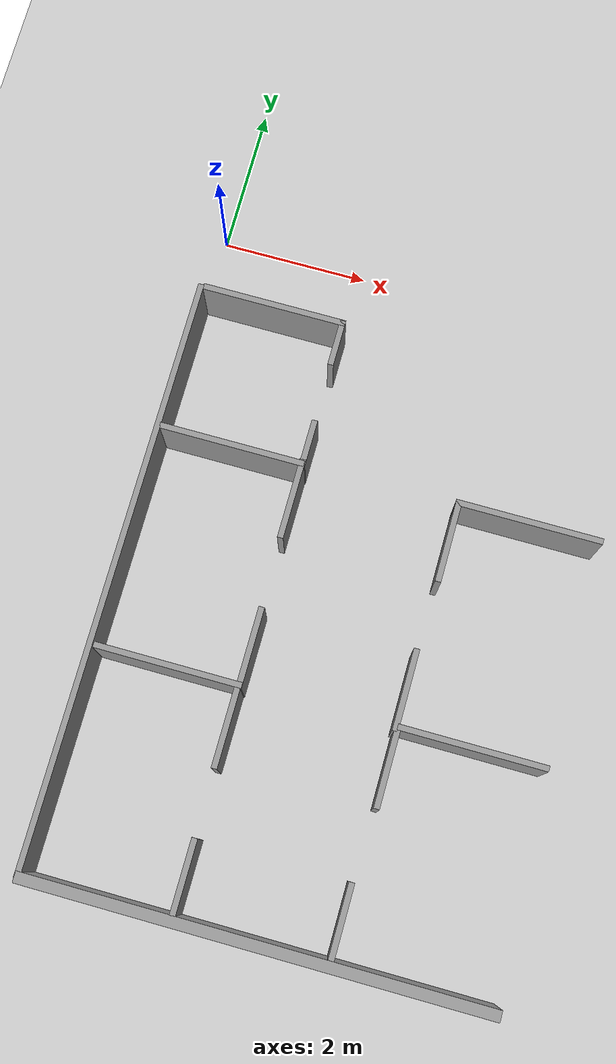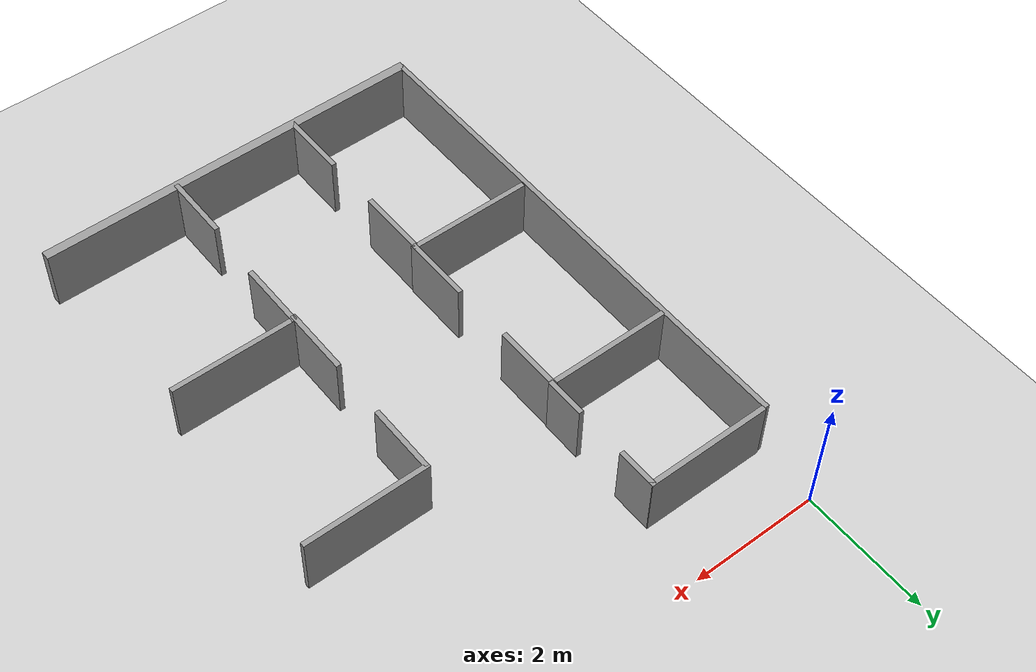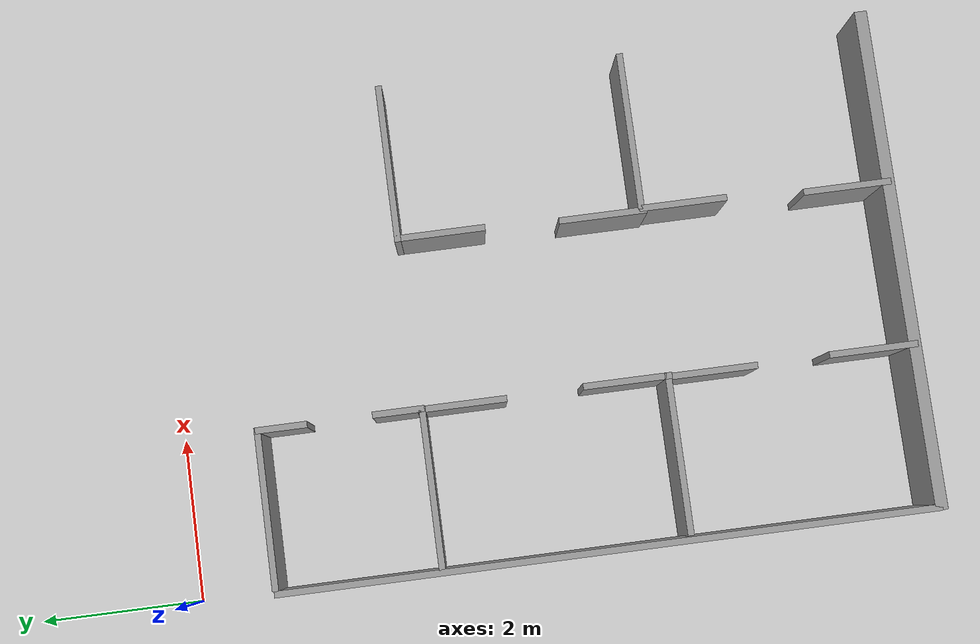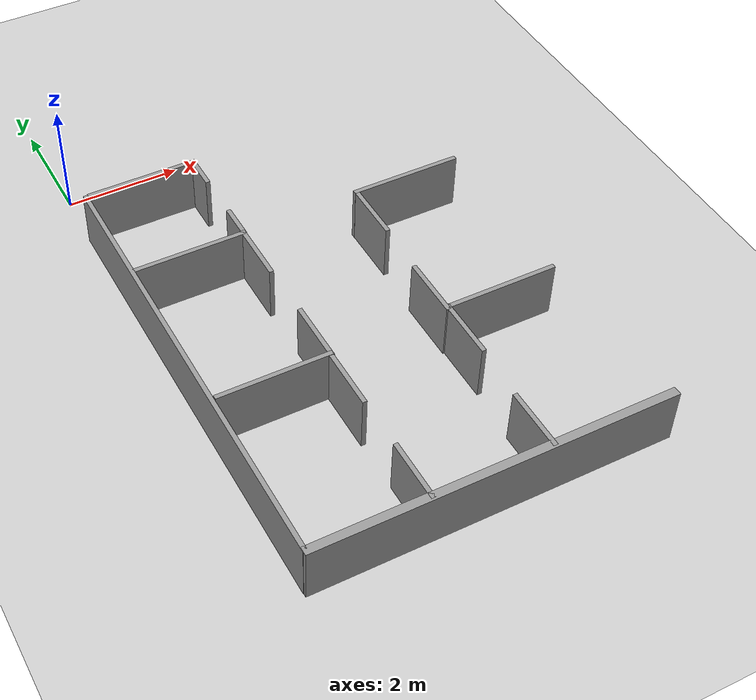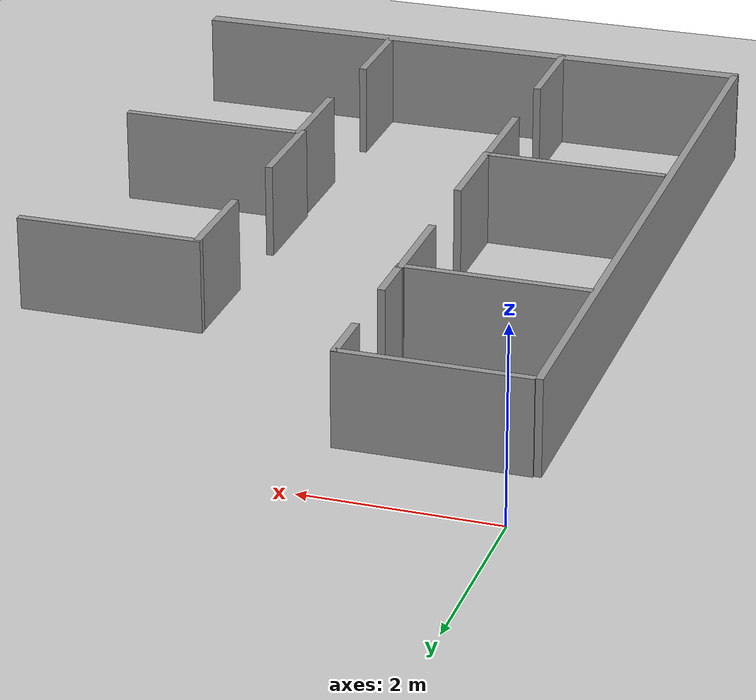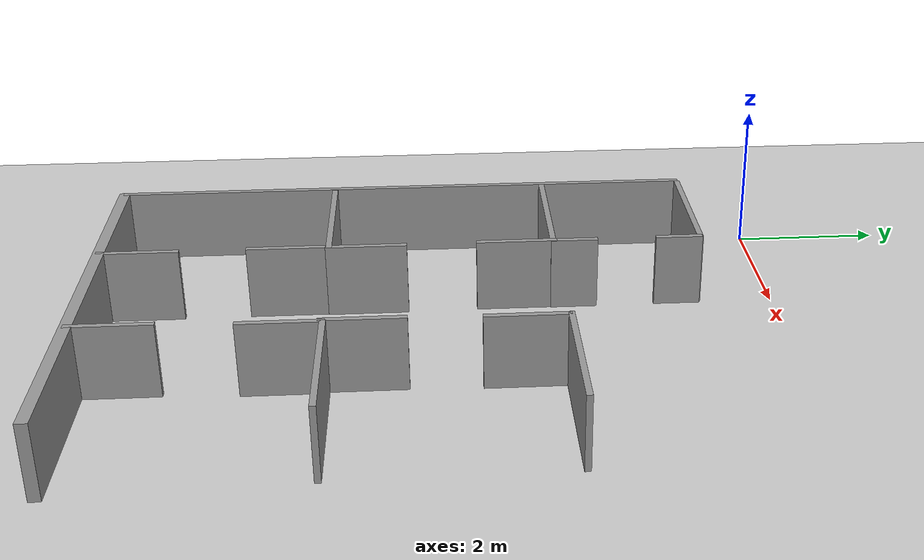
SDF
<sdf version="1.7">
 <world name="default">
  <model name="ground_plane">
   <static>1</static>
   <link name="link">
    <collision name="collision">
     <geometry><plane><normal>0 0 1</normal><size>100 100</size></plane></geometry>
     <surface><friction><ode><mu>100</mu><mu2>50</mu2></ode></friction></surface>
    </collision>
    <visual name="visual">
     <cast_shadows>0</cast_shadows>
     <geometry><plane><normal>0 0 1</normal><size>100 100</size></plane></geometry>
     <material>
      <script><uri>file://media/materials/scripts/gazebo.material</uri><name>Gazebo/Grey</name></script>
     </material>
    </visual>
   </link>
  </model>
  <model name="areaConhecida">
   <link name="link">
    <inertial>
     <mass>0.638348</mass>
     <inertia><ixx>3.5065</ixx><ixy>0</ixy><ixz>0</ixz><iyy>0.0535306</iyy><iyz>0</iyz><izz>3.45364</izz></inertia>
    </inertial>
    <pose>0.364781 -4.12525 0 0 -0 0</pose>
    <visual name="visual">
     <geometry><box><size>0.07935 8.05711 1</size></box></geometry>
     <material>
      <script><name>Gazebo/Grey</name><uri>file://media/materials/scripts/gazebo.material</uri></script>
      <shader type="pixel"/>
     </material>
    </visual>
    <collision name="collision">
     <geometry><box><size>0.07935 8.05711 1</size></box></geometry>
     <surface>
      <friction>
       <ode><mu>1</mu><mu2>1</mu2><fdir1>0 0 0</fdir1><slip1>0</slip1><slip2>0</slip2></ode>
       <torsional>
        <coefficient>1</coefficient>
        <patch_radius>0</patch_radius>
        <surface_radius>0</surface_radius>
        <use_patch_radius>1</use_patch_radius>
        <ode><slip>0</slip></ode>
       </torsional>
      </friction>
      <bounce><restitution_coefficient>0</restitution_coefficient><threshold>1e+06</threshold></bounce>
      <contact>
       <collide_without_contact>0</collide_without_contact>
       <collide_without_contact_bitmask>1</collide_without_contact_bitmask>
       <collide_bitmask>1</collide_bitmask>
       <ode>
        <soft_cfm>0</soft_cfm>
        <soft_erp>0.2</soft_erp>
        <kp>1e+13</kp>
        <kd>1</kd>
        <max_vel>0.01</max_vel>
        <min_depth>0</min_depth>
       </ode>
       <bullet>
        <split_impulse>1</split_impulse>
        <split_impulse_penetration_threshold>-0.01</split_impulse_penetration_threshold>
        <soft_cfm>0</soft_cfm>
        <soft_erp>0.2</soft_erp>
        <kp>1e+13</kp>
        <kd>1</kd>
       </bullet>
      </contact>
     </surface>
    </collision>
   </link>
   <link name="link_clone_1">
    <inertial>
     <mass>0.942553</mass>
     <inertia>
      <ixx>3.09537</ixx>
      <ixy>0</ixy>
      <ixz>0</ixz>
      <iyy>0.0803686</iyy>
      <iyz>0</iyz>
      <izz>3.01865</izz>
     </inertia>
    </inertial>
    <pose>3.43064 -8.13641 -0 0 0 -1.56949</pose>
    <visual name="visual">
     <geometry><box><size>0.152328 6.19745 1</size></box></geometry>
     <material>
      <script><name>Gazebo/Grey</name><uri>file://media/materials/scripts/gazebo.material</uri></script>
      <shader type="pixel"/>
     </material>
    </visual>
    <collision name="collision">
     <geometry><box><size>0.152328 6.19745 1</size></box></geometry>
     <surface>
      <friction>
       <ode><mu>1</mu><mu2>1</mu2><fdir1>0 0 0</fdir1><slip1>0</slip1><slip2>0</slip2></ode>
       <torsional>
        <coefficient>1</coefficient>
        <patch_radius>0</patch_radius>
        <surface_radius>0</surface_radius>
        <use_patch_radius>1</use_patch_radius>
        <ode><slip>0</slip></ode>
       </torsional>
      </friction>
      <bounce><restitution_coefficient>0</restitution_coefficient><threshold>1e+06</threshold></bounce>
      <contact>
       <collide_without_contact>0</collide_without_contact>
       <collide_without_contact_bitmask>1</collide_without_contact_bitmask>
       <collide_bitmask>1</collide_bitmask>
       <ode>
        <soft_cfm>0</soft_cfm>
        <soft_erp>0.2</soft_erp>
        <kp>1e+13</kp>
        <kd>1</kd>
        <max_vel>0.01</max_vel>
        <min_depth>0</min_depth>
       </ode>
       <bullet>
        <split_impulse>1</split_impulse>
        <split_impulse_penetration_threshold>-0.01</split_impulse_penetration_threshold>
        <soft_cfm>0</soft_cfm>
        <soft_erp>0.2</soft_erp>
        <kp>1e+13</kp>
        <kd>1</kd>
       </bullet>
      </contact>
     </surface>
    </collision>
   </link>
   <link name="link_clone_2_clone_clone_1">
    <inertial>
     <mass>0.155791</mass>
     <inertia>
      <ixx>0.0631807</ixx>
      <ixy>0</ixy>
      <ixz>0</ixz>
      <iyy>0.0130643</iyy>
      <iyz>0</iyz>
      <izz>0.0502798</izz>
     </inertia>
    </inertial>
    <pose>1.38258 -0.115056 -0 0 0 -1.57058</pose>
    <visual name="visual">
     <geometry><box><size>0.07935 1.96636 1</size></box></geometry>
     <material>
      <script><name>Gazebo/Grey</name><uri>file://media/materials/scripts/gazebo.material</uri></script>
      <shader type="pixel"/>
     </material>
    </visual>
    <collision name="collision">
     <geometry><box><size>0.07935 1.96636 1</size></box></geometry>
     <surface>
      <friction>
       <ode><mu>1</mu><mu2>1</mu2><fdir1>0 0 0</fdir1><slip1>0</slip1><slip2>0</slip2></ode>
       <torsional>
        <coefficient>1</coefficient>
        <patch_radius>0</patch_radius>
        <surface_radius>0</surface_radius>
        <use_patch_radius>1</use_patch_radius>
        <ode><slip>0</slip></ode>
       </torsional>
      </friction>
      <bounce><restitution_coefficient>0</restitution_coefficient><threshold>1e+06</threshold></bounce>
      <contact>
       <collide_without_contact>0</collide_without_contact>
       <collide_without_contact_bitmask>1</collide_without_contact_bitmask>
       <collide_bitmask>1</collide_bitmask>
       <ode>
        <soft_cfm>0</soft_cfm>
        <soft_erp>0.2</soft_erp>
        <kp>1e+13</kp>
        <kd>1</kd>
        <max_vel>0.01</max_vel>
        <min_depth>0</min_depth>
       </ode>
       <bullet>
        <split_impulse>1</split_impulse>
        <split_impulse_penetration_threshold>-0.01</split_impulse_penetration_threshold>
        <soft_cfm>0</soft_cfm>
        <soft_erp>0.2</soft_erp>
        <kp>1e+13</kp>
        <kd>1</kd>
       </bullet>
      </contact>
     </surface>
    </collision>
   </link>
   <link name="link_clone_2_clone_clone_2">
    <inertial>
     <mass>0.155791</mass>
     <inertia>
      <ixx>0.0631807</ixx>
      <ixy>0</ixy>
      <ixz>0</ixz>
      <iyy>0.0130643</iyy>
      <iyz>0</iyz>
      <izz>0.0502798</izz>
     </inertia>
    </inertial>
    <pose>1.37512 -2.11738 -0 0 0 -1.57058</pose>
    <visual name="visual">
     <geometry><box><size>0.07935 1.96636 1</size></box></geometry>
     <material>
      <script><name>Gazebo/Grey</name><uri>file://media/materials/scripts/gazebo.material</uri></script>
      <shader type="pixel"/>
     </material>
    </visual>
    <collision name="collision">
     <geometry><box><size>0.07935 1.96636 1</size></box></geometry>
     <surface>
      <friction>
       <ode><mu>1</mu><mu2>1</mu2><fdir1>0 0 0</fdir1><slip1>0</slip1><slip2>0</slip2></ode>
       <torsional>
        <coefficient>1</coefficient>
        <patch_radius>0</patch_radius>
        <surface_radius>0</surface_radius>
        <use_patch_radius>1</use_patch_radius>
        <ode><slip>0</slip></ode>
       </torsional>
      </friction>
      <bounce><restitution_coefficient>0</restitution_coefficient><threshold>1e+06</threshold></bounce>
      <contact>
       <collide_without_contact>0</collide_without_contact>
       <collide_without_contact_bitmask>1</collide_without_contact_bitmask>
       <collide_bitmask>1</collide_bitmask>
       <ode>
        <soft_cfm>0</soft_cfm>
        <soft_erp>0.2</soft_erp>
        <kp>1e+13</kp>
        <kd>1</kd>
        <max_vel>0.01</max_vel>
        <min_depth>0</min_depth>
       </ode>
       <bullet>
        <split_impulse>1</split_impulse>
        <split_impulse_penetration_threshold>-0.01</split_impulse_penetration_threshold>
        <soft_cfm>0</soft_cfm>
        <soft_erp>0.2</soft_erp>
        <kp>1e+13</kp>
        <kd>1</kd>
       </bullet>
      </contact>
     </surface>
    </collision>
   </link>
   <link name="link_clone_2_clone_clone_3">
    <inertial>
     <mass>0.155791</mass>
     <inertia>
      <ixx>0.0631807</ixx>
      <ixy>0</ixy>
      <ixz>0</ixz>
      <iyy>0.0130643</iyy>
      <iyz>0</iyz>
      <izz>0.0502798</izz>
     </inertia>
    </inertial>
    <pose>1.39974 -5.11867 -0 0 0 -1.57058</pose>
    <visual name="visual">
     <geometry><box><size>0.07935 1.96636 1</size></box></geometry>
     <material>
      <script><name>Gazebo/Grey</name><uri>file://media/materials/scripts/gazebo.material</uri></script>
      <shader type="pixel"/>
     </material>
    </visual>
    <collision name="collision">
     <geometry><box><size>0.07935 1.96636 1</size></box></geometry>
     <surface>
      <friction>
       <ode><mu>1</mu><mu2>1</mu2><fdir1>0 0 0</fdir1><slip1>0</slip1><slip2>0</slip2></ode>
       <torsional>
        <coefficient>1</coefficient>
        <patch_radius>0</patch_radius>
        <surface_radius>0</surface_radius>
        <use_patch_radius>1</use_patch_radius>
        <ode><slip>0</slip></ode>
       </torsional>
      </friction>
      <bounce><restitution_coefficient>0</restitution_coefficient><threshold>1e+06</threshold></bounce>
      <contact>
       <collide_without_contact>0</collide_without_contact>
       <collide_without_contact_bitmask>1</collide_without_contact_bitmask>
       <collide_bitmask>1</collide_bitmask>
       <ode>
        <soft_cfm>0</soft_cfm>
        <soft_erp>0.2</soft_erp>
        <kp>1e+13</kp>
        <kd>1</kd>
        <max_vel>0.01</max_vel>
        <min_depth>0</min_depth>
       </ode>
       <bullet>
        <split_impulse>1</split_impulse>
        <split_impulse_penetration_threshold>-0.01</split_impulse_penetration_threshold>
        <soft_cfm>0</soft_cfm>
        <soft_erp>0.2</soft_erp>
        <kp>1e+13</kp>
        <kd>1</kd>
       </bullet>
      </contact>
     </surface>
    </collision>
   </link>
   <link name="link_clone_2_clone_clone_4">
    <inertial>
     <mass>0.155791</mass>
     <inertia>
      <ixx>0.0631807</ixx>
      <ixy>0</ixy>
      <ixz>0</ixz>
      <iyy>0.0130643</iyy>
      <iyz>0</iyz>
      <izz>0.0502798</izz>
     </inertia>
    </inertial>
    <pose>5.39879 -5.08822 -0 0 0 -1.57058</pose>
    <visual name="visual">
     <geometry><box><size>0.07935 1.96636 1</size></box></geometry>
     <material>
      <script><name>Gazebo/Grey</name><uri>file://media/materials/scripts/gazebo.material</uri></script>
      <shader type="pixel"/>
     </material>
    </visual>
    <collision name="collision">
     <geometry><box><size>0.07935 1.96636 1</size></box></geometry>
     <surface>
      <friction>
       <ode><mu>1</mu><mu2>1</mu2><fdir1>0 0 0</fdir1><slip1>0</slip1><slip2>0</slip2></ode>
       <torsional>
        <coefficient>1</coefficient>
        <patch_radius>0</patch_radius>
        <surface_radius>0</surface_radius>
        <use_patch_radius>1</use_patch_radius>
        <ode><slip>0</slip></ode>
       </torsional>
      </friction>
      <bounce><restitution_coefficient>0</restitution_coefficient><threshold>1e+06</threshold></bounce>
      <contact>
       <collide_without_contact>0</collide_without_contact>
       <collide_without_contact_bitmask>1</collide_without_contact_bitmask>
       <collide_bitmask>1</collide_bitmask>
       <ode>
        <soft_cfm>0</soft_cfm>
        <soft_erp>0.2</soft_erp>
        <kp>1e+13</kp>
        <kd>1</kd>
        <max_vel>0.01</max_vel>
        <min_depth>0</min_depth>
       </ode>
       <bullet>
        <split_impulse>1</split_impulse>
        <split_impulse_penetration_threshold>-0.01</split_impulse_penetration_threshold>
        <soft_cfm>0</soft_cfm>
        <soft_erp>0.2</soft_erp>
        <kp>1e+13</kp>
        <kd>1</kd>
       </bullet>
      </contact>
     </surface>
    </collision>
   </link>
   <link name="link_clone_2_clone_clone_5">
    <inertial>
     <mass>0.155791</mass>
     <inertia>
      <ixx>0.0631807</ixx>
      <ixy>0</ixy>
      <ixz>0</ixz>
      <iyy>0.0130643</iyy>
      <iyz>0</iyz>
      <izz>0.0502798</izz>
     </inertia>
    </inertial>
    <pose>5.37767 -2.07942 -0 0 0 -1.57058</pose>
    <visual name="visual">
     <geometry><box><size>0.07935 1.96636 1</size></box></geometry>
     <material>
      <script><name>Gazebo/Grey</name><uri>file://media/materials/scripts/gazebo.material</uri></script>
      <shader type="pixel"/>
     </material>
    </visual>
    <collision name="collision">
     <geometry><box><size>0.07935 1.96636 1</size></box></geometry>
     <surface>
      <friction>
       <ode><mu>1</mu><mu2>1</mu2><fdir1>0 0 0</fdir1><slip1>0</slip1><slip2>0</slip2></ode>
       <torsional>
        <coefficient>1</coefficient>
        <patch_radius>0</patch_radius>
        <surface_radius>0</surface_radius>
        <use_patch_radius>1</use_patch_radius>
        <ode><slip>0</slip></ode>
       </torsional>
      </friction>
      <bounce><restitution_coefficient>0</restitution_coefficient><threshold>1e+06</threshold></bounce>
      <contact>
       <collide_without_contact>0</collide_without_contact>
       <collide_without_contact_bitmask>1</collide_without_contact_bitmask>
       <collide_bitmask>1</collide_bitmask>
       <ode>
        <soft_cfm>0</soft_cfm>
        <soft_erp>0.2</soft_erp>
        <kp>1e+13</kp>
        <kd>1</kd>
        <max_vel>0.01</max_vel>
        <min_depth>0</min_depth>
       </ode>
       <bullet>
        <split_impulse>1</split_impulse>
        <split_impulse_penetration_threshold>-0.01</split_impulse_penetration_threshold>
        <soft_cfm>0</soft_cfm>
        <soft_erp>0.2</soft_erp>
        <kp>1e+13</kp>
        <kd>1</kd>
       </bullet>
      </contact>
     </surface>
    </collision>
   </link>
   <link name="link_clone_3">
    <inertial>
     <mass>0.085982</mass>
     <inertia>
      <ixx>0.015604</ixx>
      <ixy>0</ixy>
      <ixz>0</ixz>
      <iyy>0.00721028</iyy>
      <iyz>0</iyz>
      <izz>0.00848394</izz>
     </inertia>
    </inertial>
    <pose>2.34852 -4.62379 -0 0 -0 0</pose>
    <visual name="visual">
     <geometry><box><size>0.07935 1.08525 1</size></box></geometry>
     <material>
      <script><name>Gazebo/Grey</name><uri>file://media/materials/scripts/gazebo.material</uri></script>
      <shader type="pixel"/>
     </material>
    </visual>
    <collision name="collision">
     <geometry><box><size>0.07935 1.08525 1</size></box></geometry>
     <surface>
      <friction>
       <ode><mu>1</mu><mu2>1</mu2><fdir1>0 0 0</fdir1><slip1>0</slip1><slip2>0</slip2></ode>
       <torsional>
        <coefficient>1</coefficient>
        <patch_radius>0</patch_radius>
        <surface_radius>0</surface_radius>
        <use_patch_radius>1</use_patch_radius>
        <ode><slip>0</slip></ode>
       </torsional>
      </friction>
      <bounce><restitution_coefficient>0</restitution_coefficient><threshold>1e+06</threshold></bounce>
      <contact>
       <collide_without_contact>0</collide_without_contact>
       <collide_without_contact_bitmask>1</collide_without_contact_bitmask>
       <collide_bitmask>1</collide_bitmask>
       <ode>
        <soft_cfm>0</soft_cfm>
        <soft_erp>0.2</soft_erp>
        <kp>1e+13</kp>
        <kd>1</kd>
        <max_vel>0.01</max_vel>
        <min_depth>0</min_depth>
       </ode>
       <bullet>
        <split_impulse>1</split_impulse>
        <split_impulse_penetration_threshold>-0.01</split_impulse_penetration_threshold>
        <soft_cfm>0</soft_cfm>
        <soft_erp>0.2</soft_erp>
        <kp>1e+13</kp>
        <kd>1</kd>
       </bullet>
      </contact>
     </surface>
    </collision>
   </link>
   <link name="link_clone_3_clone">
    <inertial>
     <mass>0.085982</mass>
     <inertia>
      <ixx>0.015604</ixx>
      <ixy>0</ixy>
      <ixz>0</ixz>
      <iyy>0.00721028</iyy>
      <iyz>0</iyz>
      <izz>0.00848394</izz>
     </inertia>
    </inertial>
    <pose>2.32699 -2.60638 -0 0 -0 0</pose>
    <visual name="visual">
     <geometry><box><size>0.07935 1.08525 1</size></box></geometry>
     <material>
      <script><name>Gazebo/Grey</name><uri>file://media/materials/scripts/gazebo.material</uri></script>
      <shader type="pixel"/>
     </material>
    </visual>
    <collision name="collision">
     <geometry><box><size>0.07935 1.08525 1</size></box></geometry>
     <surface>
      <friction>
       <ode><mu>1</mu><mu2>1</mu2><fdir1>0 0 0</fdir1><slip1>0</slip1><slip2>0</slip2></ode>
       <torsional>
        <coefficient>1</coefficient>
        <patch_radius>0</patch_radius>
        <surface_radius>0</surface_radius>
        <use_patch_radius>1</use_patch_radius>
        <ode><slip>0</slip></ode>
       </torsional>
      </friction>
      <bounce><restitution_coefficient>0</restitution_coefficient><threshold>1e+06</threshold></bounce>
      <contact>
       <collide_without_contact>0</collide_without_contact>
       <collide_without_contact_bitmask>1</collide_without_contact_bitmask>
       <collide_bitmask>1</collide_bitmask>
       <ode>
        <soft_cfm>0</soft_cfm>
        <soft_erp>0.2</soft_erp>
        <kp>1e+13</kp>
        <kd>1</kd>
        <max_vel>0.01</max_vel>
        <min_depth>0</min_depth>
       </ode>
       <bullet>
        <split_impulse>1</split_impulse>
        <split_impulse_penetration_threshold>-0.01</split_impulse_penetration_threshold>
        <soft_cfm>0</soft_cfm>
        <soft_erp>0.2</soft_erp>
        <kp>1e+13</kp>
        <kd>1</kd>
       </bullet>
      </contact>
     </surface>
    </collision>
   </link>
   <link name="link_clone_3_clone_0">
    <inertial>
     <mass>0.085982</mass>
     <inertia>
      <ixx>0.015604</ixx>
      <ixy>0</ixy>
      <ixz>0</ixz>
      <iyy>0.00721028</iyy>
      <iyz>0</iyz>
      <izz>0.00848394</izz>
     </inertia>
    </inertial>
    <pose>2.33577 -5.66963 -0 0 -0 0</pose>
    <visual name="visual">
     <geometry><box><size>0.07935 1.08525 1</size></box></geometry>
     <material>
      <script><name>Gazebo/Grey</name><uri>file://media/materials/scripts/gazebo.material</uri></script>
      <shader type="pixel"/>
     </material>
    </visual>
    <collision name="collision">
     <geometry><box><size>0.07935 1.08525 1</size></box></geometry>
     <surface>
      <friction>
       <ode><mu>1</mu><mu2>1</mu2><fdir1>0 0 0</fdir1><slip1>0</slip1><slip2>0</slip2></ode>
       <torsional>
        <coefficient>1</coefficient>
        <patch_radius>0</patch_radius>
        <surface_radius>0</surface_radius>
        <use_patch_radius>1</use_patch_radius>
        <ode><slip>0</slip></ode>
       </torsional>
      </friction>
      <bounce><restitution_coefficient>0</restitution_coefficient><threshold>1e+06</threshold></bounce>
      <contact>
       <collide_without_contact>0</collide_without_contact>
       <collide_without_contact_bitmask>1</collide_without_contact_bitmask>
       <collide_bitmask>1</collide_bitmask>
       <ode>
        <soft_cfm>0</soft_cfm>
        <soft_erp>0.2</soft_erp>
        <kp>1e+13</kp>
        <kd>1</kd>
        <max_vel>0.01</max_vel>
        <min_depth>0</min_depth>
       </ode>
       <bullet>
        <split_impulse>1</split_impulse>
        <split_impulse_penetration_threshold>-0.01</split_impulse_penetration_threshold>
        <soft_cfm>0</soft_cfm>
        <soft_erp>0.2</soft_erp>
        <kp>1e+13</kp>
        <kd>1</kd>
       </bullet>
      </contact>
     </surface>
    </collision>
   </link>
   <link name="link_clone_3_clone_1">
    <inertial>
     <mass>0.085982</mass>
     <inertia>
      <ixx>0.015604</ixx>
      <ixy>0</ixy>
      <ixz>0</ixz>
      <iyy>0.00721028</iyy>
      <iyz>0</iyz>
      <izz>0.00848394</izz>
     </inertia>
    </inertial>
    <pose>2.34749 -7.63454 -0 0 -0 0</pose>
    <visual name="visual">
     <geometry><box><size>0.07935 1.08525 1</size></box></geometry>
     <material>
      <script><name>Gazebo/Grey</name><uri>file://media/materials/scripts/gazebo.material</uri></script>
      <shader type="pixel"/>
     </material>
    </visual>
    <collision name="collision">
     <geometry><box><size>0.07935 1.08525 1</size></box></geometry>
     <surface>
      <friction>
       <ode><mu>1</mu><mu2>1</mu2><fdir1>0 0 0</fdir1><slip1>0</slip1><slip2>0</slip2></ode>
       <torsional>
        <coefficient>1</coefficient>
        <patch_radius>0</patch_radius>
        <surface_radius>0</surface_radius>
        <use_patch_radius>1</use_patch_radius>
        <ode><slip>0</slip></ode>
       </torsional>
      </friction>
      <bounce><restitution_coefficient>0</restitution_coefficient><threshold>1e+06</threshold></bounce>
      <contact>
       <collide_without_contact>0</collide_without_contact>
       <collide_without_contact_bitmask>1</collide_without_contact_bitmask>
       <collide_bitmask>1</collide_bitmask>
       <ode>
        <soft_cfm>0</soft_cfm>
        <soft_erp>0.2</soft_erp>
        <kp>1e+13</kp>
        <kd>1</kd>
        <max_vel>0.01</max_vel>
        <min_depth>0</min_depth>
       </ode>
       <bullet>
        <split_impulse>1</split_impulse>
        <split_impulse_penetration_threshold>-0.01</split_impulse_penetration_threshold>
        <soft_cfm>0</soft_cfm>
        <soft_erp>0.2</soft_erp>
        <kp>1e+13</kp>
        <kd>1</kd>
       </bullet>
      </contact>
     </surface>
    </collision>
   </link>
   <link name="link_clone_3_clone_14">
    <inertial>
     <mass>0.0502465</mass>
     <inertia>
      <ixx>0.00587136</ixx>
      <ixy>0</ixy>
      <ixz>0</ixz>
      <iyy>0.00421357</iyy>
      <iyz>0</iyz>
      <izz>0.00171051</izz>
     </inertia>
    </inertial>
    <pose>2.33645 -1.8289 -0 0 -0 0</pose>
    <visual name="visual">
     <geometry><box><size>0.07935 0.634202 1</size></box></geometry>
     <material>
      <script><name>Gazebo/Grey</name><uri>file://media/materials/scripts/gazebo.material</uri></script>
      <shader type="pixel"/>
     </material>
    </visual>
    <collision name="collision">
     <geometry><box><size>0.07935 0.634202 1</size></box></geometry>
     <surface>
      <friction>
       <ode><mu>1</mu><mu2>1</mu2><fdir1>0 0 0</fdir1><slip1>0</slip1><slip2>0</slip2></ode>
       <torsional>
        <coefficient>1</coefficient>
        <patch_radius>0</patch_radius>
        <surface_radius>0</surface_radius>
        <use_patch_radius>1</use_patch_radius>
        <ode><slip>0</slip></ode>
       </torsional>
      </friction>
      <bounce><restitution_coefficient>0</restitution_coefficient><threshold>1e+06</threshold></bounce>
      <contact>
       <collide_without_contact>0</collide_without_contact>
       <collide_without_contact_bitmask>1</collide_without_contact_bitmask>
       <collide_bitmask>1</collide_bitmask>
       <ode>
        <soft_cfm>0</soft_cfm>
        <soft_erp>0.2</soft_erp>
        <kp>1e+13</kp>
        <kd>1</kd>
        <max_vel>0.01</max_vel>
        <min_depth>0</min_depth>
       </ode>
       <bullet>
        <split_impulse>1</split_impulse>
        <split_impulse_penetration_threshold>-0.01</split_impulse_penetration_threshold>
        <soft_cfm>0</soft_cfm>
        <soft_erp>0.2</soft_erp>
        <kp>1e+13</kp>
        <kd>1</kd>
       </bullet>
      </contact>
     </surface>
    </collision>
   </link>
   <link name="link_clone_3_clone_14_clone">
    <inertial>
     <mass>0.0502465</mass>
     <inertia>
      <ixx>0.00587136</ixx>
      <ixy>0</ixy>
      <ixz>0</ixz>
      <iyy>0.00421357</iyy>
      <iyz>0</iyz>
      <izz>0.00171051</izz>
     </inertia>
    </inertial>
    <pose>2.32844 -0.403388 -0 0 -0 0</pose>
    <visual name="visual">
     <geometry><box><size>0.07935 0.634202 1</size></box></geometry>
     <material>
      <script><name>Gazebo/Grey</name><uri>file://media/materials/scripts/gazebo.material</uri></script>
      <shader type="pixel"/>
     </material>
    </visual>
    <collision name="collision">
     <geometry><box><size>0.07935 0.634202 1</size></box></geometry>
     <surface>
      <friction>
       <ode><mu>1</mu><mu2>1</mu2><fdir1>0 0 0</fdir1><slip1>0</slip1><slip2>0</slip2></ode>
       <torsional>
        <coefficient>1</coefficient>
        <patch_radius>0</patch_radius>
        <surface_radius>0</surface_radius>
        <use_patch_radius>1</use_patch_radius>
        <ode><slip>0</slip></ode>
       </torsional>
      </friction>
      <bounce><restitution_coefficient>0</restitution_coefficient><threshold>1e+06</threshold></bounce>
      <contact>
       <collide_without_contact>0</collide_without_contact>
       <collide_without_contact_bitmask>1</collide_without_contact_bitmask>
       <collide_bitmask>1</collide_bitmask>
       <ode>
        <soft_cfm>0</soft_cfm>
        <soft_erp>0.2</soft_erp>
        <kp>1e+13</kp>
        <kd>1</kd>
        <max_vel>0.01</max_vel>
        <min_depth>0</min_depth>
       </ode>
       <bullet>
        <split_impulse>1</split_impulse>
        <split_impulse_penetration_threshold>-0.01</split_impulse_penetration_threshold>
        <soft_cfm>0</soft_cfm>
        <soft_erp>0.2</soft_erp>
        <kp>1e+13</kp>
        <kd>1</kd>
       </bullet>
      </contact>
     </surface>
    </collision>
   </link>
   <link name="link_clone_3_clone_2">
    <inertial>
     <mass>0.085982</mass>
     <inertia>
      <ixx>0.015604</ixx>
      <ixy>0</ixy>
      <ixz>0</ixz>
      <iyy>0.00721028</iyy>
      <iyz>0</iyz>
      <izz>0.00848394</izz>
     </inertia>
    </inertial>
    <pose>4.36663 -7.62864 -0 0 -0 0</pose>
    <visual name="visual">
     <geometry><box><size>0.07935 1.08525 1</size></box></geometry>
     <material>
      <script><name>Gazebo/Grey</name><uri>file://media/materials/scripts/gazebo.material</uri></script>
      <shader type="pixel"/>
     </material>
    </visual>
    <collision name="collision">
     <geometry><box><size>0.07935 1.08525 1</size></box></geometry>
     <surface>
      <friction>
       <ode><mu>1</mu><mu2>1</mu2><fdir1>0 0 0</fdir1><slip1>0</slip1><slip2>0</slip2></ode>
       <torsional>
        <coefficient>1</coefficient>
        <patch_radius>0</patch_radius>
        <surface_radius>0</surface_radius>
        <use_patch_radius>1</use_patch_radius>
        <ode><slip>0</slip></ode>
       </torsional>
      </friction>
      <bounce><restitution_coefficient>0</restitution_coefficient><threshold>1e+06</threshold></bounce>
      <contact>
       <collide_without_contact>0</collide_without_contact>
       <collide_without_contact_bitmask>1</collide_without_contact_bitmask>
       <collide_bitmask>1</collide_bitmask>
       <ode>
        <soft_cfm>0</soft_cfm>
        <soft_erp>0.2</soft_erp>
        <kp>1e+13</kp>
        <kd>1</kd>
        <max_vel>0.01</max_vel>
        <min_depth>0</min_depth>
       </ode>
       <bullet>
        <split_impulse>1</split_impulse>
        <split_impulse_penetration_threshold>-0.01</split_impulse_penetration_threshold>
        <soft_cfm>0</soft_cfm>
        <soft_erp>0.2</soft_erp>
        <kp>1e+13</kp>
        <kd>1</kd>
       </bullet>
      </contact>
     </surface>
    </collision>
   </link>
   <link name="link_clone_3_clone_3">
    <inertial>
     <mass>0.085982</mass>
     <inertia>
      <ixx>0.015604</ixx>
      <ixy>0</ixy>
      <ixz>0</ixz>
      <iyy>0.00721028</iyy>
      <iyz>0</iyz>
      <izz>0.00848394</izz>
     </inertia>
    </inertial>
    <pose>4.42441 -5.60312 -0 0 -0 0</pose>
    <visual name="visual">
     <geometry><box><size>0.07935 1.08525 1</size></box></geometry>
     <material>
      <script><name>Gazebo/Grey</name><uri>file://media/materials/scripts/gazebo.material</uri></script>
      <shader type="pixel"/>
     </material>
    </visual>
    <collision name="collision">
     <geometry><box><size>0.07935 1.08525 1</size></box></geometry>
     <surface>
      <friction>
       <ode><mu>1</mu><mu2>1</mu2><fdir1>0 0 0</fdir1><slip1>0</slip1><slip2>0</slip2></ode>
       <torsional>
        <coefficient>1</coefficient>
        <patch_radius>0</patch_radius>
        <surface_radius>0</surface_radius>
        <use_patch_radius>1</use_patch_radius>
        <ode><slip>0</slip></ode>
       </torsional>
      </friction>
      <bounce><restitution_coefficient>0</restitution_coefficient><threshold>1e+06</threshold></bounce>
      <contact>
       <collide_without_contact>0</collide_without_contact>
       <collide_without_contact_bitmask>1</collide_without_contact_bitmask>
       <collide_bitmask>1</collide_bitmask>
       <ode>
        <soft_cfm>0</soft_cfm>
        <soft_erp>0.2</soft_erp>
        <kp>1e+13</kp>
        <kd>1</kd>
        <max_vel>0.01</max_vel>
        <min_depth>0</min_depth>
       </ode>
       <bullet>
        <split_impulse>1</split_impulse>
        <split_impulse_penetration_threshold>-0.01</split_impulse_penetration_threshold>
        <soft_cfm>0</soft_cfm>
        <soft_erp>0.2</soft_erp>
        <kp>1e+13</kp>
        <kd>1</kd>
       </bullet>
      </contact>
     </surface>
    </collision>
   </link>
   <link name="link_clone_3_clone_4">
    <inertial>
     <mass>0.085982</mass>
     <inertia>
      <ixx>0.015604</ixx>
      <ixy>0</ixy>
      <ixz>0</ixz>
      <iyy>0.00721028</iyy>
      <iyz>0</iyz>
      <izz>0.00848394</izz>
     </inertia>
    </inertial>
    <pose>4.39858 -4.60975 -0 0 -0 0</pose>
    <visual name="visual">
     <geometry><box><size>0.07935 1.08525 1</size></box></geometry>
     <material>
      <script><name>Gazebo/Grey</name><uri>file://media/materials/scripts/gazebo.material</uri></script>
      <shader type="pixel"/>
     </material>
    </visual>
    <collision name="collision">
     <geometry><box><size>0.07935 1.08525 1</size></box></geometry>
     <surface>
      <friction>
       <ode><mu>1</mu><mu2>1</mu2><fdir1>0 0 0</fdir1><slip1>0</slip1><slip2>0</slip2></ode>
       <torsional>
        <coefficient>1</coefficient>
        <patch_radius>0</patch_radius>
        <surface_radius>0</surface_radius>
        <use_patch_radius>1</use_patch_radius>
        <ode><slip>0</slip></ode>
       </torsional>
      </friction>
      <bounce><restitution_coefficient>0</restitution_coefficient><threshold>1e+06</threshold></bounce>
      <contact>
       <collide_without_contact>0</collide_without_contact>
       <collide_without_contact_bitmask>1</collide_without_contact_bitmask>
       <collide_bitmask>1</collide_bitmask>
       <ode>
        <soft_cfm>0</soft_cfm>
        <soft_erp>0.2</soft_erp>
        <kp>1e+13</kp>
        <kd>1</kd>
        <max_vel>0.01</max_vel>
        <min_depth>0</min_depth>
       </ode>
       <bullet>
        <split_impulse>1</split_impulse>
        <split_impulse_penetration_threshold>-0.01</split_impulse_penetration_threshold>
        <soft_cfm>0</soft_cfm>
        <soft_erp>0.2</soft_erp>
        <kp>1e+13</kp>
        <kd>1</kd>
       </bullet>
      </contact>
     </surface>
    </collision>
   </link>
   <link name="link_clone_3_clone_5">
    <inertial>
     <mass>0.085982</mass>
     <inertia>
      <ixx>0.015604</ixx>
      <ixy>0</ixy>
      <ixz>0</ixz>
      <iyy>0.00721028</iyy>
      <iyz>0</iyz>
      <izz>0.00848394</izz>
     </inertia>
    </inertial>
    <pose>4.43566 -2.61591 -0 0 -0 0</pose>
    <visual name="visual">
     <geometry><box><size>0.07935 1.08525 1</size></box></geometry>
     <material>
      <script><name>Gazebo/Grey</name><uri>file://media/materials/scripts/gazebo.material</uri></script>
      <shader type="pixel"/>
     </material>
    </visual>
    <collision name="collision">
     <geometry><box><size>0.07935 1.08525 1</size></box></geometry>
     <surface>
      <friction>
       <ode><mu>1</mu><mu2>1</mu2><fdir1>0 0 0</fdir1><slip1>0</slip1><slip2>0</slip2></ode>
       <torsional>
        <coefficient>1</coefficient>
        <patch_radius>0</patch_radius>
        <surface_radius>0</surface_radius>
        <use_patch_radius>1</use_patch_radius>
        <ode><slip>0</slip></ode>
       </torsional>
      </friction>
      <bounce><restitution_coefficient>0</restitution_coefficient><threshold>1e+06</threshold></bounce>
      <contact>
       <collide_without_contact>0</collide_without_contact>
       <collide_without_contact_bitmask>1</collide_without_contact_bitmask>
       <collide_bitmask>1</collide_bitmask>
       <ode>
        <soft_cfm>0</soft_cfm>
        <soft_erp>0.2</soft_erp>
        <kp>1e+13</kp>
        <kd>1</kd>
        <max_vel>0.01</max_vel>
        <min_depth>0</min_depth>
       </ode>
       <bullet>
        <split_impulse>1</split_impulse>
        <split_impulse_penetration_threshold>-0.01</split_impulse_penetration_threshold>
        <soft_cfm>0</soft_cfm>
        <soft_erp>0.2</soft_erp>
        <kp>1e+13</kp>
        <kd>1</kd>
       </bullet>
      </contact>
     </surface>
    </collision>
   </link>
   <static>0</static>
   <pose>-0.371049 -0.908163 0.5 0 -0 0</pose>
  </model>
 </world>
</sdf>
